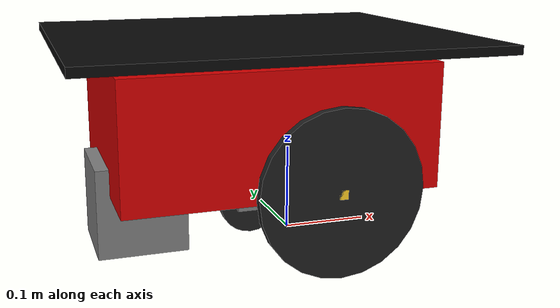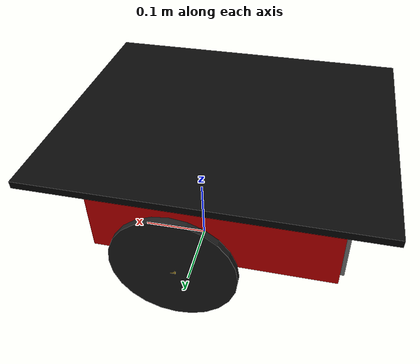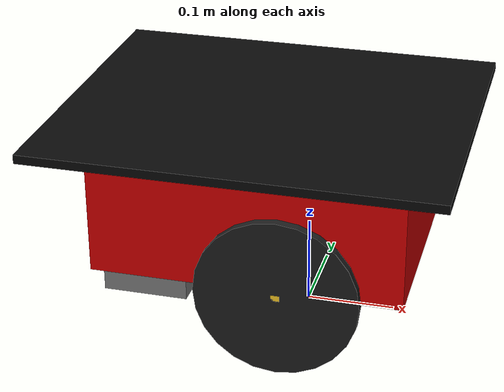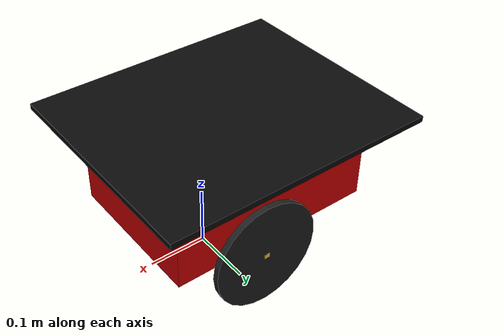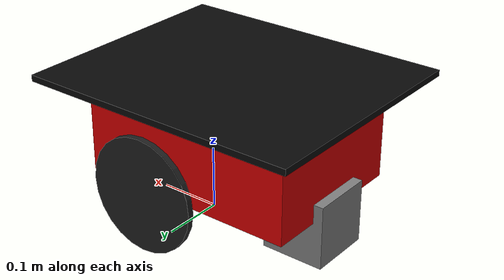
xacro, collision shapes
<?xml version="1.0"?>

<robot name="pioneer3dx" xmlns:xacro="http://ros.org/wiki/xacro">

  <!-- import all gazebo-customization elements, including gazebo colors -->
  <xacro:include filename="$(find p3dx_description)/urdf/gz.xacro" />
  <!-- import the pioneer 3dx's wheels -->
  <xacro:include filename="$(find p3dx_description)/urdf/p3dx_wheel.xacro" />

  <!-- chassis -->
  <link name="base_link">
    <inertial>
      <mass value="3.5" />
      <origin xyz="-0.05 0 0" />
      <inertia ixx="1" ixy="0" ixz="0" iyy="1" iyz="0" izz="1" />
    </inertial>
    <visual name="base_chassis_visual">
      <origin xyz="-0.045 0 0.148" rpy="0 0 0" />
      <geometry>
        <mesh filename="$(find p3dx_description)/meshes/chassis.stl" />
      </geometry>
      <material name="ChassisRed">
        <color rgba="0.851 0.0 0.0 1.0" />
      </material>
    </visual>
    <collision name="base_chassis_collision">
      <origin xyz="-0.045 0 0.145" rpy="0 0 0" />
      <geometry>
        <box size="0.35 0.25 0.14" />
      </geometry>
    </collision>
  </link>

  <!-- top_plate -->
  <link name="top_plate">
    <inertial>
      <mass value="0.01" />
      <origin xyz="0 0 0" />
      <inertia ixx="1" ixy="0" ixz="0" iyy="1" iyz="0" izz="1" />
    </inertial>
    <visual name="top_plate_visual">
      <origin xyz="0 0 0" rpy="0 0 0" />
      <geometry>
        <mesh filename="$(find p3dx_description)/meshes/top.stl" />
      </geometry>
      <material name="TopBlack">
        <color rgba="0.038 0.038 0.038 1.0" />
      </material>
    </visual>
    <collision name="top_plate_collision">
      <origin xyz="0.0 0 0" rpy="0 0 0" />
      <geometry>
        <box size="0.45 0.38 0.01" />
      </geometry>
    </collision>
  </link>
  <joint name="base_top_joint" type="fixed">
    <origin xyz="-0.045 0 0.234" rpy="0 0 0" />
    <parent link="base_link" />
    <child link="top_plate" />
  </joint>

  <!-- swivel -->
  <link name="swivel">
    <inertial>
      <mass value="0.1" />
      <origin xyz="0 0 0" />
      <inertia ixx="0.01" ixy="0" ixz="0" iyy="0.01" iyz="0" izz="0.01" />
    </inertial>
    <visual name="swivel_visual">
      <origin xyz="0 0 0" rpy="0 0 0" />
      <geometry>
        <mesh filename="$(find p3dx_description)/meshes/swivel.stl" />
      </geometry>
      <material name="SwivelGrey">
        <color rgba="0.5 0.5 0.5 1" />
      </material>
    </visual>
    <collision name="swivel_collision">
      <origin xyz="0 0 0" rpy="0 0 0" />
      <geometry>
        <box size="0.1 0.1 0.1" />
      </geometry>
    </collision>
  </link>
  <joint name="base_swivel_joint" type="continuous">
    <origin xyz="-0.185 0 0.055" rpy="0 0 0" />
    <axis xyz="0 0 1" />
    <parent link="base_link" />
    <child link="swivel" />
  </joint>

  <!-- center_hubcap -->
  <link name="center_hubcap">
    <inertial>
      <mass value="0.01" />
      <origin xyz="0 0 0" />
      <inertia ixx="0.0124" ixy="0" ixz="0" iyy="0.0152" iyz="0" izz="0.0118" />
    </inertial>
    <visual name="center_hubcap_visual">
      <origin xyz="0 0 0" rpy="0 0 0" />
      <geometry>
        <mesh filename="$(find p3dx_description)/meshes/center_hubcap.stl" />
      </geometry>
      <material name="HubcapGrey">
        <color rgba="0.5 0.5 0.5 1" />
      </material>
    </visual>
    <collision name="center_hubcap_collision">
      <origin xyz="0 0 0" rpy="0 0 0" />
      <geometry>
        <box size="0.05 0.05 0.01" />
      </geometry>
    </collision>
  </link>
  <joint name="base_hubcap_joint" type="continuous">
    <origin xyz="-0.0445 0 0.039" rpy="0 0 0" />
    <axis xyz="0 1 1" />
    <parent link="base_link" />
    <child link="center_hubcap" />
  </joint>

  <!-- center_wheel -->
  <link name="center_wheel">
    <inertial>
      <mass value="0.1" />
      <origin xyz="0 0 0" />
      <inertia ixx="0.0124" ixy="0" ixz="0" iyy="0.0152" iyz="0" izz="0.0118" />
    </inertial>
    <visual name="center_wheel_visual">
      <origin xyz="0 0 0" rpy="0 0 0" />
      <geometry>
        <mesh filename="$(find p3dx_description)/meshes/center_wheel.stl" />
      </geometry>
      <material name="WheelBlack">
        <color rgba="0.117 0.117 0.117 1" />
      </material>
    </visual>
    <collision name="center_wheel_collision">
      <origin xyz="0 0 0" rpy="${-3.1415927/2.0} 0 0" />
      <geometry>
        <cylinder radius="0.0375" length="0.01" />
      </geometry>
    </collision>
  </link>
  <joint name="center_wheel_joint" type="fixed">
    <origin xyz="-0.0035 0 -0.001" rpy="0 0 0" />
    <parent link="center_hubcap" />
    <child link="center_wheel" />
  </joint>

  <xacro:p3dx_wheel suffix="left" parent="base_link" reflect="1"/>
  <xacro:p3dx_wheel suffix="right" parent="base_link" reflect="-1"/>

  <!-- front_sonar -->
  <link name="front_sonar">
    <inertial>
      <mass value="0.0001" />
      <origin xyz="0 0 0" />
      <inertia ixx="1" ixy="0" ixz="0" iyy="1" iyz="0" izz="1" />
    </inertial>
    <visual name="front_sonar_visual">
      <origin rpy="0 0 0" xyz="0 0 0" />
      <geometry>
        <mesh filename="$(find p3dx_description)/meshes/front_sonar.stl" />
      </geometry>
      <material name="SonarYellow">
        <color rgba="0.715 0.583 0.210 1.0" />
      </material>
    </visual>
    <collision name="front_sonar_collision">
      <origin rpy="0 0 0" xyz="0 0 0" />
      <geometry>
        <box size="0.02 0.02 0.02" />
      </geometry>
    </collision>
  </link>
  <joint name="base_front_joint" type="fixed">
    <origin rpy="0 0 0" xyz="0.109 0 0.145" />
    <parent link="base_link" />
    <child link="front_sonar" />
  </joint>

</robot>

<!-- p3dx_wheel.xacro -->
<robot xmlns:xacro="http://ros.org/wiki/xacro">

	<!-- properties (constants) -->
	<property name="M_PI" value="3.14159" />

	<!-- right/left hubcap + wheel -->
	<xacro:macro name="p3dx_wheel" params="suffix parent reflect">

		<!-- hubcap -->
		<link name="p3dx_${suffix}_hubcap">
			<inertial>
				<mass value="0.01" />
				<origin xyz="0 0 0" />
				<inertia ixx="0.012411765597" ixy="0" ixz="0" iyy="0.015218160428" iyz="0" izz="0.011763977943" />
			</inertial>

			<visual name="base_visual">
				<origin xyz="0 0 0" rpy="0 0 0" />
				<geometry name="pioneer_geom">
					<mesh filename="file://$(find p3dx_description)/meshes/${suffix}_hubcap.stl" />
				</geometry>

				<material name="HubcapYellow">
					<color rgba="1.0 0.811 0.151 1.0" />
				</material>
			</visual>

			<collision>
				<origin xyz="0 0 0" rpy="0 0 0" />
				<geometry>
					<box size="0.01 0.01 0.01" />
				</geometry>
			</collision>
		</link>

		<joint name="base_${suffix}_hubcap_joint" type="fixed">
			<axis xyz="0 1 0" />
			<anchor xyz="0 0 0" />
			<limit effort="100" velocity="100" />
			<joint_properties damping="0.0" friction="0.0" />
			<origin xyz="0 ${reflect*0.158} 0.091" rpy="0 0 0" />
			<parent link="base_link" />
			<child link="p3dx_${suffix}_hubcap" />
		</joint>

		<!-- wheel -->
		<link name="p3dx_${suffix}_wheel">
			<inertial>
				<mass value="0.5" />
				<origin xyz="0 0 0" />
				<inertia ixx="0.012411765597" ixy="0" ixz="0" iyy="0.015218160428" iyz="0" izz="0.011763977943" />
			</inertial>

			<visual name="base_visual">
				<origin xyz="0 0 0" rpy="0 0 0" />
				<geometry name="pioneer_geom">
					<mesh filename="file://$(find p3dx_description)/meshes/${suffix}_wheel.stl" />
				</geometry>
				<material name="WheelBlack">
					<color rgba="0.117 0.117 0.117 1" />
				</material>
			</visual>

			<collision>
				<origin xyz="0 0 0" rpy="${-3.1415927/2} 0 0" />
				<geometry>
					<cylinder radius="0.09" length="0.01" />
				</geometry>
			</collision>
		</link>

		<joint name="base_${suffix}_wheel_joint" type="continuous">
			<origin xyz="0 0 0" rpy="0 0 0" />
			<parent link="p3dx_${suffix}_hubcap" />
			<child link="p3dx_${suffix}_wheel" />
			<axis xyz="0 1 0" rpy="0 0 0"/>
		</joint>

		<!-- gazebo elements -->

		<transmission name="${parent}_${suffix}_wheel_trans">
			<type>pr2_mechanism_model/SimpleTransmission</type>
			<joint name="base_${suffix}_wheel_joint" />
			<actuator name="base_${suffix}_wheel_motor">
				<hardwareInterface>EffortJointInterface</hardwareInterface>
				<mechanicalReduction>${reflect * 624/35 * 80/19}</mechanicalReduction>
			</actuator>
		</transmission>

		<gazebo reference="p3dx_${suffix}_hubcap">
			<material>Gazebo/Yellow</material>
		</gazebo>

		<gazebo reference="p3dx_${suffix}_wheel">
			<material>Gazebo/Black</material>
			<mu1>0.5</mu1>
			<mu2>50.0</mu2>
			<kp>1000.0</kp>
			<kd>1.0</kd>
		</gazebo>

	</xacro:macro>

</robot>
